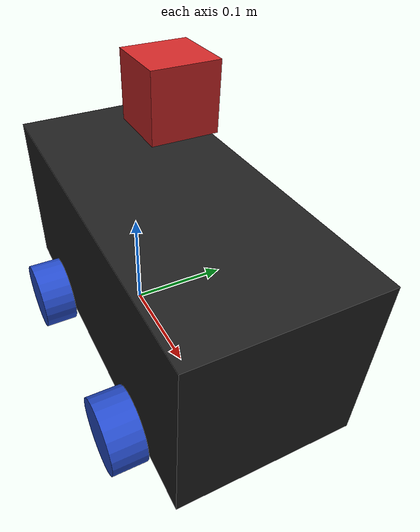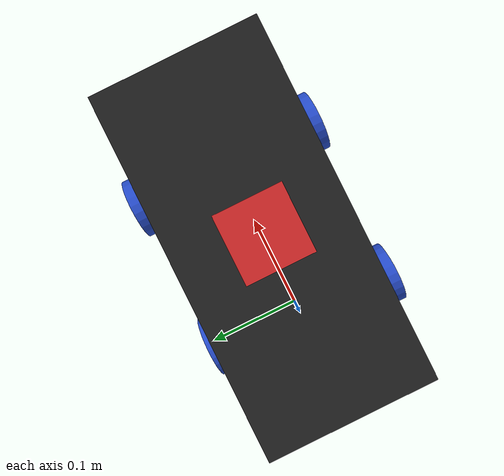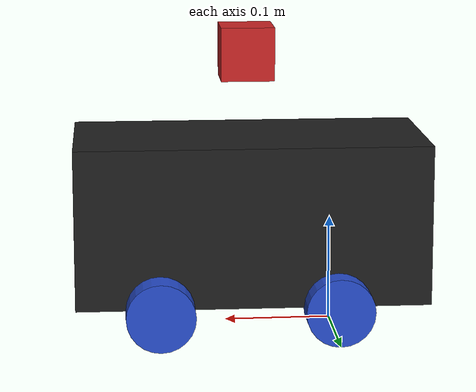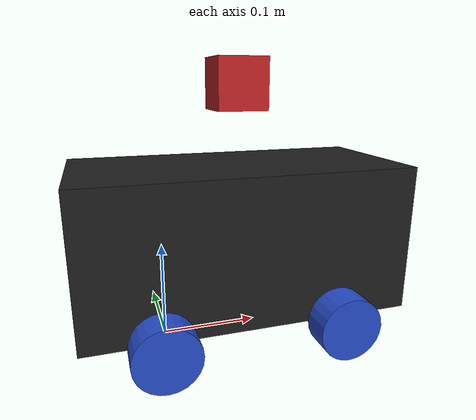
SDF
<sdf version="1.7">
 <world name="obstacles.world">
  <model name="my_bot">
   <link name="base_link">
    <inertial>
     <pose>0.078466 -0.000667 0.041672 0 -0 0</pose>
     <mass>0.90002</mass>
     <inertia>
      <ixx>0.00658185</ixx>
      <ixy>-0.000163557</ixy>
      <ixz>2.47327e-05</ixz>
      <iyy>0.0100854</iyy>
      <iyz>-2.49866e-05</iyz>
      <izz>0.0118767</izz>
     </inertia>
    </inertial>
    <collision name="base_link_fixed_joint_lump__back_left_wheel_collision">
     <pose>0 0.085 0 -1.5708 0 0</pose>
     <geometry><cylinder><length>0.03</length><radius>0.032</radius></cylinder></geometry>
     <surface><friction><ode><mu>0.018</mu><mu2>0.018</mu2></ode></friction></surface>
    </collision>
    <collision name="base_link_fixed_joint_lump__back_right_wheel_collision_1">
     <pose>-0.0128 -0.091 0 1.5708 -0 0</pose>
     <geometry><cylinder><length>0.03</length><radius>0.032</radius></cylinder></geometry>
     <surface><friction><ode><mu>0.018</mu><mu2>0.018</mu2></ode></friction></surface>
    </collision>
    <collision name="base_link_fixed_joint_lump__camera_link_collision_2">
     <pose>0.16 -0.004 0.4572 0 -0 0</pose>
     <geometry><box><size>0.05 0.05 0.05</size></box></geometry>
    </collision>
    <collision name="base_link_fixed_joint_lump__chassis_collision_3">
     <pose>0.0778 0 0.075 0 -0 0</pose>
     <geometry><box><size>0.3302 0.1524 0.15</size></box></geometry>
    </collision>
    <collision name="base_link_fixed_joint_lump__front_left_wheel_collision_4">
     <pose>0.165 0.091 0 -1.5708 0 0</pose>
     <geometry><cylinder><length>0.03</length><radius>0.032</radius></cylinder></geometry>
     <surface><friction><ode><mu>0.018</mu><mu2>0.018</mu2></ode></friction></surface>
    </collision>
    <collision name="base_link_fixed_joint_lump__front_right_wheel_collision_5">
     <pose>0.165 -0.091 0 1.5708 -0 0</pose>
     <geometry><cylinder><length>0.03</length><radius>0.032</radius></cylinder></geometry>
     <surface><friction><ode><mu>0.018</mu><mu2>0.018</mu2></ode></friction></surface>
    </collision>
    <collision name="base_link_fixed_joint_lump__laser_frame_collision_6">
     <pose>-0.02 0 0.1143 0 -0 0</pose>
     <geometry><box><size>0.1 0.1 0.1</size></box></geometry>
    </collision>
    <visual name="base_link_fixed_joint_lump__back_left_wheel_visual">
     <pose>0 0.085 0 -1.5708 0 0</pose>
     <geometry><cylinder><length>0.03</length><radius>0.032</radius></cylinder></geometry>
     <material>
      <script><name>Gazebo/Blue</name><uri>file://media/materials/scripts/gazebo.material</uri></script>
     </material>
    </visual>
    <visual name="base_link_fixed_joint_lump__back_right_wheel_visual_1">
     <pose>-0.0128 -0.091 0 1.5708 -0 0</pose>
     <geometry><cylinder><length>0.03</length><radius>0.032</radius></cylinder></geometry>
     <material>
      <script><name>Gazebo/Blue</name><uri>file://media/materials/scripts/gazebo.material</uri></script>
     </material>
    </visual>
    <visual name="base_link_fixed_joint_lump__camera_link_visual_2">
     <pose>0.08 -0.002 0.2286 0 -0 0</pose>
     <geometry><box><size>0.05 0.05 0.05</size></box></geometry>
     <material>
      <script><name>Gazebo/Red</name><uri>file://media/materials/scripts/gazebo.material</uri></script>
     </material>
    </visual>
    <visual name="base_link_fixed_joint_lump__chassis_visual_3">
     <pose>0.0778 0 0.075 0 -0 0</pose>
     <geometry><box><size>0.3302 0.1524 0.15</size></box></geometry>
     <material>
      <script><name>Gazebo/Black</name><uri>file://media/materials/scripts/gazebo.material</uri></script>
     </material>
    </visual>
    <visual name="base_link_fixed_joint_lump__front_left_wheel_visual_4">
     <pose>0.165 0.091 0 -1.5708 0 0</pose>
     <geometry><cylinder><length>0.03</length><radius>0.032</radius></cylinder></geometry>
     <material>
      <script><name>Gazebo/Blue</name><uri>file://media/materials/scripts/gazebo.material</uri></script>
     </material>
    </visual>
    <visual name="base_link_fixed_joint_lump__front_right_wheel_visual_5">
     <pose>0.165 -0.091 0 1.5708 -0 0</pose>
     <geometry><cylinder><length>0.03</length><radius>0.032</radius></cylinder></geometry>
     <material>
      <script><name>Gazebo/Blue</name><uri>file://media/materials/scripts/gazebo.material</uri></script>
     </material>
    </visual>
    <visual name="base_link_fixed_joint_lump__laser_frame_visual_6">
     <pose>-0.02 0 0.1143 0 -0 0</pose>
     <geometry><box><size>0.06 0.05 0.05</size></box></geometry>
    </visual>
    <sensor name="camera1" type="camera">
     <update_rate>30</update_rate>
     <camera name="head">
      <horizontal_fov>1.0856</horizontal_fov>
      <image><width>3280</width><height>2464</height><format>R8G8B8</format></image>
      <clip><near>0.02</near><far>300</far></clip>
      <noise><type>gaussian</type><mean>0</mean><stddev>0.007</stddev></noise>
     </camera>
     <plugin name="camera_controller" filename="libgazebo_ros_camera.so">
      <alwaysOn>1</alwaysOn>
      <updateRate>0.0</updateRate>
      <cameraName>camera1</cameraName>
      <imageTopicName>image_raw</imageTopicName>
      <cameraInfoTopicName>camera_info</cameraInfoTopicName>
      <frameName>camera_link</frameName>
      <hackBaseline>0.07</hackBaseline>
      <distortionK1>0.0</distortionK1>
      <distortionK2>0.0</distortionK2>
      <distortionK3>0.0</distortionK3>
      <distortionT1>0.0</distortionT1>
      <distortionT2>0.0</distortionT2>
     </plugin>
     <pose>0.08 -0.002 0.2286 0 -0 0</pose>
    </sensor>
    <sensor name="laser" type="ray">
     <visualize>1</visualize>
     <update_rate>10</update_rate>
     <ray>
      <scan>
       <horizontal>
        <samples>90</samples>
        <resolution>10</resolution>
        <min_angle>-1.5708</min_angle>
        <max_angle>1.5708</max_angle>
       </horizontal>
       <vertical><samples>1</samples><min_angle>0</min_angle><max_angle>0</max_angle></vertical>
      </scan>
      <range><min>0.3</min><max>5</max><resolution>0.01</resolution></range>
     </ray>
     <plugin name="laser_controller" filename="libgazebo_ros_ray_sensor.so">
      <ros><argument>~/out:=scan</argument></ros>
      <output_type>sensor_msgs/LaserScan</output_type>
      <frame_name>laser_frame</frame_name>
     </plugin>
     <pose>-0.02 0 0.1143 0 -0 0</pose>
    </sensor>
   </link>
   <static>0</static>
   <plugin name="object_controller" filename="libgazebo_ros_planar_move.so">
    <commandTopic>cmd_vel</commandTopic>
    <odometryTopic>odom</odometryTopic>
    <odometryFrame>odom</odometryFrame>
    <odometryRate>20.0</odometryRate>
    <robot_base_frame>base_link</robot_base_frame>
   </plugin>
   <pose>-3e-06 2.1e-05 0.032 0 -0 -2.3e-05</pose>
  </model>
 </world>
</sdf>
